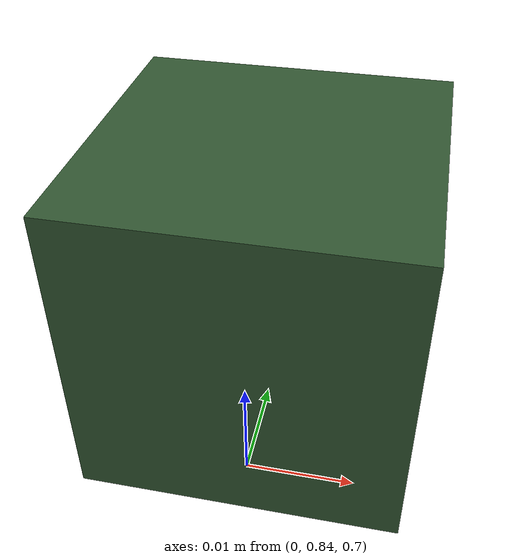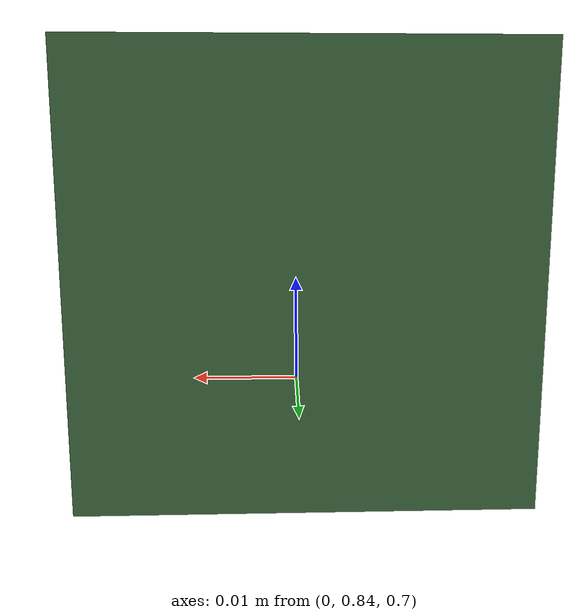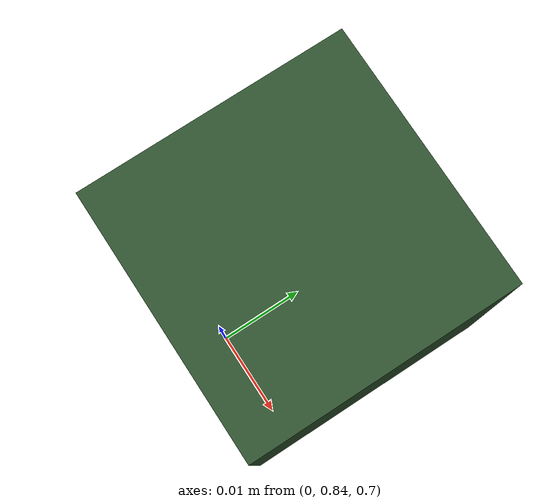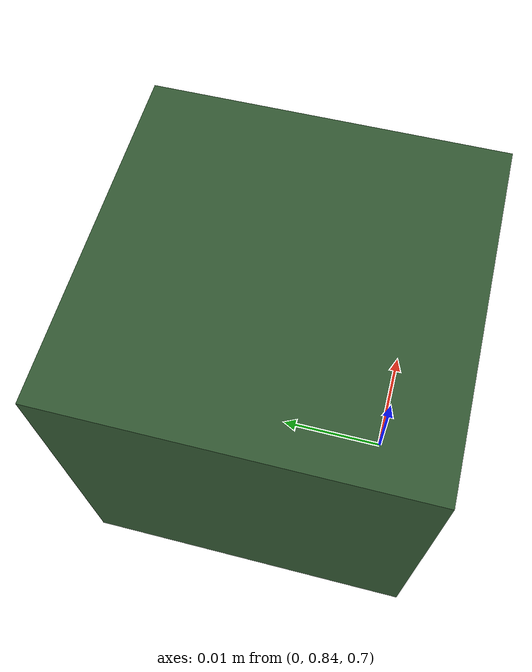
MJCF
<mujoco model="block_place">

  <worldbody>

    <!-- ======= block ======= -->
    <body name="block_green" pos="0 0.85 0.7145">
      <joint type="free" frictionloss="0.00001"/>
      <inertial pos="0 0 0" mass="0.001" diaginertia="1e-7 1e-7 1e-7" />
      <geom rgba="0.21 0.36 0.21 1" condim="4" solimp="2 1 0.01" solref="0.01 1" friction="1 0.005 0.0001" pos="0 0 0" size="0.0145 0.0145 0.0145" type="box"/>
    </body>

  </worldbody>

</mujoco>
